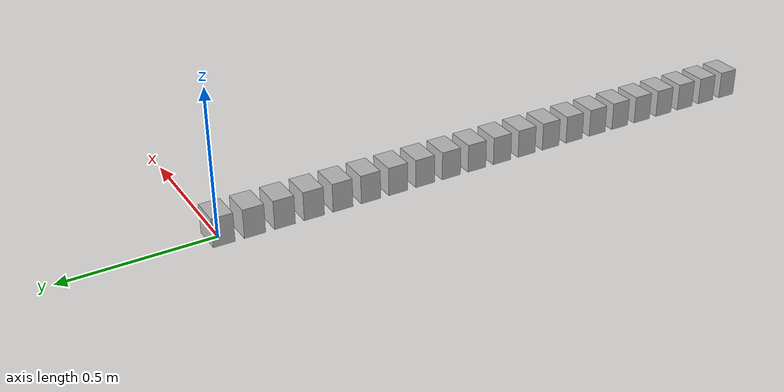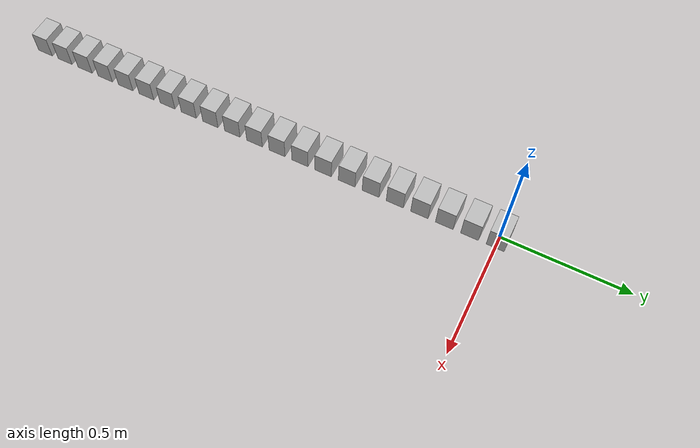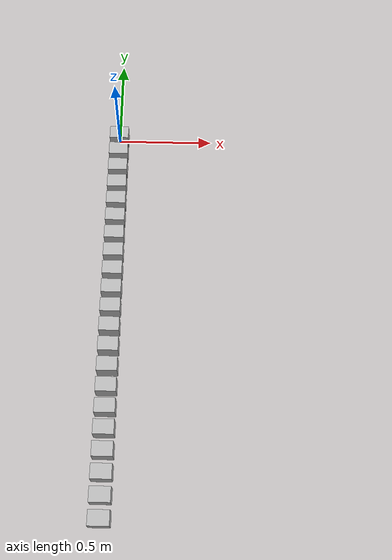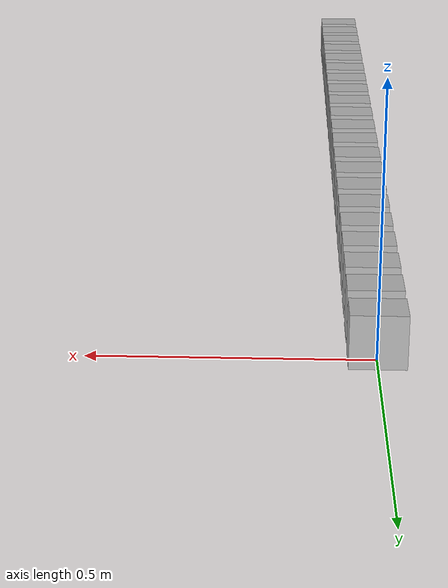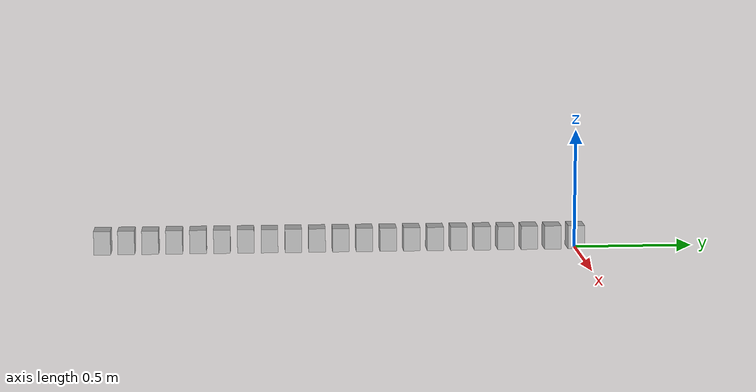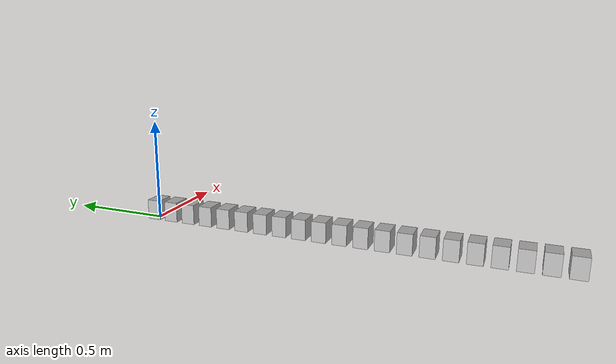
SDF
<?xml version="1.0" encoding="UTF-8"?>
<sdf version="1.6">
<model name="serial snake">

<!--                                                   links
                                                           -->

<!--                                     BOX parts      -->

  <!-- ---------------------------------parallel link 01-------------------------------------------------------------------------- -->
  <!-- -- box part ----  ------ -->
  <link name="plink_01_box">
    <pose>0 0 0.05 0 0 0</pose>
    <inertial>
      <inertia>
        <ixx>0.00018625</ixx> <!-- using tensor matrix -->
        <iyy>0.00025</iyy>
        <izz>0.00018625</izz>
        <ixy>0</ixy>
        <ixz>0</ixz>
        <iyz>0</iyz>
      </inertia>
      <mass>0.15</mass>
    </inertial>
    <collision name="collision">
      <geometry>
        <box>
          <size>0.1 0.07 0.1</size>
        </box>
      </geometry>
    </collision>
    <visual name="visual">
      <geometry>
        <box>
          <size>0.1 0.07 0.1</size>
        </box>
      </geometry>
    </visual>
  </link>

 <!-- ---------------------------------parallel link 02------------------------------------------------------------------------ -->
  <!-- -- box part ----  ------ -->
  <link name="plink_02_box">
    <pose>0 -0.10 0.05 0 0 0</pose>
    <inertial>
      <inertia>
        <ixx>0.00018625</ixx> <!-- using tensor matrix -->
        <iyy>0.00025</iyy>
        <izz>0.00018625</izz>
        <ixy>0</ixy>
        <ixz>0</ixz>
        <iyz>0</iyz>
      </inertia>
      <mass>0.15</mass>
    </inertial>
    <collision name="collision">
      <geometry>
        <box>
          <size>0.1 0.07 0.1</size>
        </box>
      </geometry>
    </collision>
    <visual name="visual">
      <geometry>
        <box>
          <size>0.1 0.07 0.1</size>
        </box>
      </geometry>
    </visual>
  </link>
 <!-- ---------------------------------parallel link 03------------------------------------------------------------------------ -->
  <!-- -- box part ----  ------ -->
  <link name="plink_03_box">
    <pose>0 -0.20 0.05 0 0 0</pose> <!-- changes with -0.10 for each  y coord -->
    <inertial>
      <inertia>
        <ixx>0.00018625</ixx> <!-- using tensor matrix -->
        <iyy>0.00025</iyy>
        <izz>0.00018625</izz>
        <ixy>0</ixy>
        <ixz>0</ixz>
        <iyz>0</iyz>
      </inertia>
      <mass>0.15</mass>
    </inertial>
    <collision name="collision">
      <geometry>
        <box>
          <size>0.1 0.07 0.1</size>
        </box>
      </geometry>
    </collision>
    <visual name="visual">
      <geometry>
        <box>
          <size>0.1 0.07 0.1</size>
        </box>
      </geometry>
    </visual>
  </link>
 <!-- ---------------------------------parallel link 04------------------------------------------------------------------------ -->
  <!-- -- box part ----  ------ -->
  <link name="plink_04_box">
    <pose>0 -0.30 0.05 0 0 0</pose> <!-- changes with -0.10 for each  y coord -->
    <inertial>
      <inertia>
        <ixx>0.00018625</ixx> <!-- using tensor matrix -->
        <iyy>0.00025</iyy>
        <izz>0.00018625</izz>
        <ixy>0</ixy>
        <ixz>0</ixz>
        <iyz>0</iyz>
      </inertia>
      <mass>0.15</mass>
    </inertial>
    <collision name="collision">
      <geometry>
        <box>
          <size>0.1 0.07 0.1</size>
        </box>
      </geometry>
    </collision>
    <visual name="visual">
      <geometry>
        <box>
          <size>0.1 0.07 0.1</size>
        </box>
      </geometry>
    </visual>
  </link>
 <!-- ---------------------------------parallel link 05------------------------------------------------------------------------ -->
  <!-- -- box part ----  ------ -->
  <link name="plink_05_box">
    <pose>0 -0.40 0.05 0 0 0</pose> <!-- changes with -0.10 for each  y coord -->
    <inertial>
      <inertia>
        <ixx>0.00018625</ixx> <!-- using tensor matrix -->
        <iyy>0.00025</iyy>
        <izz>0.00018625</izz>
        <ixy>0</ixy>
        <ixz>0</ixz>
        <iyz>0</iyz>
      </inertia>
      <mass>0.15</mass>
    </inertial>
    <collision name="collision">
      <geometry>
        <box>
          <size>0.1 0.07 0.1</size>
        </box>
      </geometry>
    </collision>
    <visual name="visual">
      <geometry>
        <box>
          <size>0.1 0.07 0.1</size>
        </box>
      </geometry>
    </visual>
  </link>
 <!-- ---------------------------------parallel link 06------------------------------------------------------------------------ -->
  <!-- -- box part ----  ------ -->
  <link name="plink_06_box">
    <pose>0 -0.50 0.05 0 0 0</pose> <!-- changes with -0.10 for each  y coord -->
    <inertial>
      <inertia>
        <ixx>0.00018625</ixx> <!-- using tensor matrix -->
        <iyy>0.00025</iyy>
        <izz>0.00018625</izz>
        <ixy>0</ixy>
        <ixz>0</ixz>
        <iyz>0</iyz>
      </inertia>
      <mass>0.15</mass>
    </inertial>
    <collision name="collision">
      <geometry>
        <box>
          <size>0.1 0.07 0.1</size>
        </box>
      </geometry>
    </collision>
    <visual name="visual">
      <geometry>
        <box>
          <size>0.1 0.07 0.1</size>
        </box>
      </geometry>
    </visual>
  </link>
 <!-- ---------------------------------parallel link 07------------------------------------------------------------------------ -->
  <!-- -- box part ----  ------ -->
  <link name="plink_07_box">
    <pose>0 -0.60 0.05 0 0 0</pose> <!-- changes with -0.10 for each  y coord -->
    <inertial>
      <inertia>
        <ixx>0.00018625</ixx> <!-- using tensor matrix -->
        <iyy>0.00025</iyy>
        <izz>0.00018625</izz>
        <ixy>0</ixy>
        <ixz>0</ixz>
        <iyz>0</iyz>
      </inertia>
      <mass>0.15</mass>
    </inertial>
    <collision name="collision">
      <geometry>
        <box>
          <size>0.1 0.07 0.1</size>
        </box>
      </geometry>
    </collision>
    <visual name="visual">
      <geometry>
        <box>
          <size>0.1 0.07 0.1</size>
        </box>
      </geometry>
    </visual>
  </link>
 <!-- ---------------------------------parallel link 08------------------------------------------------------------------------ -->
  <!-- -- box part ----  ------ -->
  <link name="plink_08_box">
    <pose>0 -0.70 0.05 0 0 0</pose> <!-- changes with -0.10 for each  y coord -->
    <inertial>
      <inertia>
        <ixx>0.00018625</ixx> <!-- using tensor matrix -->
        <iyy>0.00025</iyy>
        <izz>0.00018625</izz>
        <ixy>0</ixy>
        <ixz>0</ixz>
        <iyz>0</iyz>
      </inertia>
      <mass>0.15</mass>
    </inertial>
    <collision name="collision">
      <geometry>
        <box>
          <size>0.1 0.07 0.1</size>
        </box>
      </geometry>
    </collision>
    <visual name="visual">
      <geometry>
        <box>
          <size>0.1 0.07 0.1</size>
        </box>
      </geometry>
    </visual>
  </link>
 <!-- ---------------------------------parallel link 09------------------------------------------------------------------------ -->
  <!-- -- box part ----  ------ -->
  <link name="plink_09_box">
    <pose>0 -0.80 0.05 0 0 0</pose> <!-- changes with -0.10 for each  y coord -->
    <inertial>
      <inertia>
        <ixx>0.00018625</ixx> <!-- using tensor matrix -->
        <iyy>0.00025</iyy>
        <izz>0.00018625</izz>
        <ixy>0</ixy>
        <ixz>0</ixz>
        <iyz>0</iyz>
      </inertia>
      <mass>0.15</mass>
    </inertial>
    <collision name="collision">
      <geometry>
        <box>
          <size>0.1 0.07 0.1</size>
        </box>
      </geometry>
    </collision>
    <visual name="visual">
      <geometry>
        <box>
          <size>0.1 0.07 0.1</size>
        </box>
      </geometry>
    </visual>
  </link>
 <!-- ---------------------------------parallel link 10------------------------------------------------------------------------ -->
  <!-- -- box part ----  ------ -->
  <link name="plink_10_box">
    <pose>0 -0.90 0.05 0 0 0</pose> <!-- changes with -0.10 for each  y coord -->
    <inertial>
      <inertia>
        <ixx>0.00018625</ixx> <!-- using tensor matrix -->
        <iyy>0.00025</iyy>
        <izz>0.00018625</izz>
        <ixy>0</ixy>
        <ixz>0</ixz>
        <iyz>0</iyz>
      </inertia>
      <mass>0.15</mass>
    </inertial>
    <collision name="collision">
      <geometry>
        <box>
          <size>0.1 0.07 0.1</size>
        </box>
      </geometry>
    </collision>
    <visual name="visual">
      <geometry>
        <box>
          <size>0.1 0.07 0.1</size>
        </box>
      </geometry>
    </visual>
  </link>
 <!-- ---------------------------------parallel link 11------------------------------------------------------------------------ -->
  <!-- -- box part ----  ------ -->
  <link name="plink_11_box">
    <pose>0 -1.00 0.05 0 0 0</pose> <!-- changes with -0.10 for each  y coord -->
    <inertial>
      <inertia>
        <ixx>0.00018625</ixx> <!-- using tensor matrix -->
        <iyy>0.00025</iyy>
        <izz>0.00018625</izz>
        <ixy>0</ixy>
        <ixz>0</ixz>
        <iyz>0</iyz>
      </inertia>
      <mass>0.15</mass>
    </inertial>
    <collision name="collision">
      <geometry>
        <box>
          <size>0.1 0.07 0.1</size>
        </box>
      </geometry>
    </collision>
    <visual name="visual">
      <geometry>
        <box>
          <size>0.1 0.07 0.1</size>
        </box>
      </geometry>
    </visual>
  </link>
 <!-- ---------------------------------parallel link 12------------------------------------------------------------------------ -->
  <!-- -- box part ----  ------ -->
  <link name="plink_12_box">
    <pose>0 -1.10 0.05 0 0 0</pose> <!-- changes with -0.10 for each  y coord -->
    <inertial>
      <inertia>
        <ixx>0.00018625</ixx> <!-- using tensor matrix -->
        <iyy>0.00025</iyy>
        <izz>0.00018625</izz>
        <ixy>0</ixy>
        <ixz>0</ixz>
        <iyz>0</iyz>
      </inertia>
      <mass>0.15</mass>
    </inertial>
    <collision name="collision">
      <geometry>
        <box>
          <size>0.1 0.07 0.1</size>
        </box>
      </geometry>
    </collision>
    <visual name="visual">
      <geometry>
        <box>
          <size>0.1 0.07 0.1</size>
        </box>
      </geometry>
    </visual>
  </link>
 <!-- ---------------------------------parallel link 13------------------------------------------------------------------------ -->
  <!-- -- box part ----  ------ -->
  <link name="plink_13_box">
    <pose>0 -1.20 0.05 0 0 0</pose> <!-- changes with -0.10 for each  y coord -->
    <inertial>
      <inertia>
        <ixx>0.00018625</ixx> <!-- using tensor matrix -->
        <iyy>0.00025</iyy>
        <izz>0.00018625</izz>
        <ixy>0</ixy>
        <ixz>0</ixz>
        <iyz>0</iyz>
      </inertia>
      <mass>0.15</mass>
    </inertial>
    <collision name="collision">
      <geometry>
        <box>
          <size>0.1 0.07 0.1</size>
        </box>
      </geometry>
    </collision>
    <visual name="visual">
      <geometry>
        <box>
          <size>0.1 0.07 0.1</size>
        </box>
      </geometry>
    </visual>
  </link>
 <!-- ---------------------------------parallel link 14------------------------------------------------------------------------ -->
  <!-- -- box part ----  ------ -->
  <link name="plink_14_box">
    <pose>0 -1.30 0.05 0 0 0</pose> <!-- changes with -0.10 for each  y coord -->
    <inertial>
      <inertia>
        <ixx>0.00018625</ixx> <!-- using tensor matrix -->
        <iyy>0.00025</iyy>
        <izz>0.00018625</izz>
        <ixy>0</ixy>
        <ixz>0</ixz>
        <iyz>0</iyz>
      </inertia>
      <mass>0.15</mass>
    </inertial>
    <collision name="collision">
      <geometry>
        <box>
          <size>0.1 0.07 0.1</size>
        </box>
      </geometry>
    </collision>
    <visual name="visual">
      <geometry>
        <box>
          <size>0.1 0.07 0.1</size>
        </box>
      </geometry>
    </visual>
  </link>
  <!-- ---------------------------------parallel link 15------------------------------------------------------------------------ -->
  <!-- -- box part ----  ------ -->
  <link name="plink_15_box">
    <pose>0 -1.40 0.05 0 0 0</pose> <!-- changes with -0.10 for each  y coord -->
    <inertial>
      <inertia>
        <ixx>0.00018625</ixx> <!-- using tensor matrix -->
        <iyy>0.00025</iyy>
        <izz>0.00018625</izz>
        <ixy>0</ixy>
        <ixz>0</ixz>
        <iyz>0</iyz>
      </inertia>
      <mass>0.15</mass>
    </inertial>
    <collision name="collision">
      <geometry>
        <box>
          <size>0.1 0.07 0.1</size>
        </box>
      </geometry>
    </collision>
    <visual name="visual">
      <geometry>
        <box>
          <size>0.1 0.07 0.1</size>
        </box>
      </geometry>
    </visual>
  </link>
 <!-- ---------------------------------parallel link 16------------------------------------------------------------------------ -->
  <!-- -- box part ----  ------ -->
  <link name="plink_16_box">
    <pose>0 -1.50 0.05 0 0 0</pose> <!-- changes with -0.10 for each  y coord -->
    <inertial>
      <inertia>
        <ixx>0.00018625</ixx> <!-- using tensor matrix -->
        <iyy>0.00025</iyy>
        <izz>0.00018625</izz>
        <ixy>0</ixy>
        <ixz>0</ixz>
        <iyz>0</iyz>
      </inertia>
      <mass>0.15</mass>
    </inertial>
    <collision name="collision">
      <geometry>
        <box>
          <size>0.1 0.07 0.1</size>
        </box>
      </geometry>
    </collision>
    <visual name="visual">
      <geometry>
        <box>
          <size>0.1 0.07 0.1</size>
        </box>
      </geometry>
    </visual>
  </link>
 <!-- ---------------------------------parallel link 17------------------------------------------------------------------------ -->
  <!-- -- box part ----  ------ -->
  <link name="plink_17_box">
    <pose>0 -1.60 0.05 0 0 0</pose> <!-- changes with -0.10 for each  y coord -->
    <inertial>
      <inertia>
        <ixx>0.00018625</ixx> <!-- using tensor matrix -->
        <iyy>0.00025</iyy>
        <izz>0.00018625</izz>
        <ixy>0</ixy>
        <ixz>0</ixz>
        <iyz>0</iyz>
      </inertia>
      <mass>0.15</mass>
    </inertial>
    <collision name="collision">
      <geometry>
        <box>
          <size>0.1 0.07 0.1</size>
        </box>
      </geometry>
    </collision>
    <visual name="visual">
      <geometry>
        <box>
          <size>0.1 0.07 0.1</size>
        </box>
      </geometry>
    </visual>
  </link>
 <!-- ---------------------------------parallel link 18------------------------------------------------------------------------ -->
  <!-- -- box part ----  ------ -->
  <link name="plink_18_box">
    <pose>0 -1.70 0.05 0 0 0</pose> <!-- changes with -0.10 for each  y coord -->
    <inertial>
      <inertia>
        <ixx>0.00018625</ixx> <!-- using tensor matrix -->
        <iyy>0.00025</iyy>
        <izz>0.00018625</izz>
        <ixy>0</ixy>
        <ixz>0</ixz>
        <iyz>0</iyz>
      </inertia>
      <mass>0.15</mass>
    </inertial>
    <collision name="collision">
      <geometry>
        <box>
          <size>0.1 0.07 0.1</size>
        </box>
      </geometry>
    </collision>
    <visual name="visual">
      <geometry>
        <box>
          <size>0.1 0.07 0.1</size>
        </box>
      </geometry>
    </visual>
  </link>
   <!-- ---------------------------------parallel link 19------------------------------------------------------------------------ -->
  <!-- -- box part ----  ------ -->
  <link name="plink_19_box">
    <pose>0 -1.80 0.05 0 0 0</pose> <!-- changes with -0.10 for each  y coord -->
    <inertial>
      <inertia>
        <ixx>0.00018625</ixx> <!-- using tensor matrix -->
        <iyy>0.00025</iyy>
        <izz>0.00018625</izz>
        <ixy>0</ixy>
        <ixz>0</ixz>
        <iyz>0</iyz>
      </inertia>
      <mass>0.15</mass>
    </inertial>
    <collision name="collision">
      <geometry>
        <box>
          <size>0.1 0.07 0.1</size>
        </box>
      </geometry>
    </collision>
    <visual name="visual">
      <geometry>
        <box>
          <size>0.1 0.07 0.1</size>
        </box>
      </geometry>
    </visual>
  </link>
 <!-- ---------------------------------parallel link 20------------------------------------------------------------------------ -->
  <!-- -- box part ----  ------ -->
  <link name="plink_20_box">
    <pose>0 -1.90 0.05 0 0 0</pose> <!-- changes with -0.10 for each  y coord -->
    <inertial>
      <inertia>
        <ixx>0.00018625</ixx> <!-- using tensor matrix -->
        <iyy>0.00025</iyy>
        <izz>0.00018625</izz>
        <ixy>0</ixy>
        <ixz>0</ixz>
        <iyz>0</iyz>
      </inertia>
      <mass>0.15</mass>
    </inertial>
    <collision name="collision">
      <geometry>
        <box>
          <size>0.1 0.07 0.1</size>
        </box>
      </geometry>
    </collision>
    <visual name="visual">
      <geometry>
        <box>
          <size>0.1 0.07 0.1</size>
        </box>
      </geometry>
    </visual>
  </link>
 <!-- ---------------------------------parallel link 21------------------------------------------------------------------------ -->
  <!-- -- box part ----  ------ -->
  <link name="plink_21_box">
    <pose>0 -2.00 0.05 0 0 0</pose> <!-- changes with -0.10 for each  y coord -->
    <inertial>
      <inertia>
        <ixx>0.00018625</ixx> <!-- using tensor matrix -->
        <iyy>0.00025</iyy>
        <izz>0.00018625</izz>
        <ixy>0</ixy>
        <ixz>0</ixz>
        <iyz>0</iyz>
      </inertia>
      <mass>0.15</mass>
    </inertial>
    <collision name="collision">
      <geometry>
        <box>
          <size>0.1 0.07 0.1</size>
        </box>
      </geometry>
    </collision>
    <visual name="visual">
      <geometry>
        <box>
          <size>0.1 0.07 0.1</size>
        </box>
      </geometry>
    </visual>
  </link>

<!--                                                   Dynamic  joints                                                             -->

<!-- MOVEMENT  - plink 02 --------------------------------------------------------------------------------------->
<joint name="plink_2_MOVE" type="revolute">
  <pose>0 -0.0525 0 0 0 0</pose>
  <child>plink_01_box</child>
  <parent>plink_02_box</parent>
  <axis>
    <xyz>0 0 1</xyz>
    <limit>
	<!-- have taklen 25 degrees as the llimit for actuation -->
      <lower>-0.436332</lower>
      <upper>0.436332</upper>
    </limit>
  </axis>
</joint>

<!-- MOVEMENT  - plink 03 --------------------------------------------------------------------------------------->
<joint name="plink_3_MOVE" type="revolute">
  <pose>0 -0.0525 0 0 0 0</pose>
  <child>plink_02_box</child>
  <parent>plink_03_box</parent>
  <axis>
    <xyz>0 0 1</xyz>
    <limit>
      <lower>-0.436332</lower>
      <upper>0.436332</upper>
    </limit>
  </axis>
</joint>

<!-- MOVEMENT  - plink 04 --------------------------------------------------------------------------------------->
<joint name="plink_4_MOVE" type="revolute">
  <pose>0 -0.0525 0 0 0 0</pose>
  <child>plink_03_box</child>
  <parent>plink_04_box</parent>
  <axis>
    <xyz>0 0 1</xyz>
    <limit>
      <lower>-0.436332</lower>
      <upper>0.436332</upper>
    </limit>
  </axis>
</joint>

<!-- MOVEMENT  - plink 05 --------------------------------------------------------------------------------------->
<joint name="plink_5_MOVE" type="revolute">
  <pose>0 -0.0525 0 0 0 0</pose>
  <child>plink_04_box</child>
  <parent>plink_05_box</parent>
  <axis>
    <xyz>0 0 1</xyz>
    <limit>
      <lower>-0.436332</lower>
      <upper>0.436332</upper>
    </limit>
  </axis>
</joint>

<!-- MOVEMENT  - plink 06 --------------------------------------------------------------------------------------->
<joint name="plink_6_MOVE" type="revolute">
  <pose>0 -0.0525 0 0 0 0</pose>
  <child>plink_05_box</child>
  <parent>plink_06_box</parent>
  <axis>
    <xyz>0 0 1</xyz>
    <limit>
      <lower>-0.436332</lower>
      <upper>0.436332</upper>
    </limit>
  </axis>
</joint>

<!-- MOVEMENT  - plink 07 --------------------------------------------------------------------------------------->
<joint name="plink_7_MOVE" type="revolute">
  <pose>0 -0.0525 0 0 0 0</pose>
  <child>plink_06_box</child>
  <parent>plink_07_box</parent>
  <axis>
    <xyz>0 0 1</xyz>
    <limit>
      <lower>-0.436332</lower>
      <upper>0.436332</upper>
    </limit>
  </axis>
</joint>

<!-- MOVEMENT  - plink 08 --------------------------------------------------------------------------------------->
<joint name="plink_8_MOVE" type="revolute">
  <pose>0 -0.0525 0 0 0 0</pose>
  <child>plink_07_box</child>
  <parent>plink_08_box</parent>
  <axis>
    <xyz>0 0 1</xyz>
    <limit>
      <lower>-0.436332</lower>
      <upper>0.436332</upper>
    </limit>
  </axis>
</joint>

<!-- MOVEMENT  - plink 09 --------------------------------------------------------------------------------------->
<joint name="plink_9_MOVE" type="revolute">
  <pose>0 -0.0525 0 0 0 0</pose>
  <child>plink_08_box</child>
  <parent>plink_09_box</parent>
  <axis>
    <xyz>0 0 1</xyz>
    <limit>
      <lower>-0.436332</lower>
      <upper>0.436332</upper>
    </limit>
  </axis>
</joint>

<!-- MOVEMENT  - plink 10 --------------------------------------------------------------------------------------->
<joint name="plink_10_MOVE" type="revolute">
  <pose>0 -0.0525 0 0 0 0</pose>
  <child>plink_09_box</child>
  <parent>plink_10_box</parent>
  <axis>
    <xyz>0 0 1</xyz>
    <limit>
      <lower>-0.436332</lower>
      <upper>0.436332</upper>
    </limit>
  </axis>
</joint>

<!-- MOVEMENT  - plink 11 --------------------------------------------------------------------------------------->
<joint name="plink_11_MOVE" type="revolute">
  <pose>0 -0.0525 0 0 0 0</pose>
  <child>plink_10_box</child>
  <parent>plink_11_box</parent>
  <axis>
    <xyz>0 0 1</xyz>
    <limit>
      <lower>-0.436332</lower>
      <upper>0.436332</upper>
    </limit>
  </axis>
</joint>

<!-- MOVEMENT  - plink 12 --------------------------------------------------------------------------------------->
<joint name="plink_12_MOVE" type="revolute">
  <pose>0 -0.0525 0 0 0 0</pose>
  <child>plink_11_box</child>
  <parent>plink_12_box</parent>
  <axis>
    <xyz>0 0 1</xyz>
    <limit>
      <lower>-0.436332</lower>
      <upper>0.436332</upper>
    </limit>
  </axis>
</joint>

<!-- MOVEMENT  - plink 13 --------------------------------------------------------------------------------------->
<joint name="plink_13_MOVE" type="revolute">
  <pose>0 -0.0525 0 0 0 0</pose>
  <child>plink_12_box</child>
  <parent>plink_13_box</parent>
  <axis>
    <xyz>0 0 1</xyz>
    <limit>
      <lower>-0.436332</lower>
      <upper>0.436332</upper>
    </limit>
  </axis>
</joint>

<!-- MOVEMENT  - plink 14 --------------------------------------------------------------------------------------->
<joint name="plink_14_MOVE" type="revolute">
  <pose>0 -0.0525 0 0 0 0</pose>
  <child>plink_13_box</child>
  <parent>plink_14_box</parent>
  <axis>
    <xyz>0 0 1</xyz>
    <limit>
      <lower>-0.436332</lower>
      <upper>0.436332</upper>
    </limit>
  </axis>
</joint>

<!-- MOVEMENT  - plink 15 --------------------------------------------------------------------------------------->
<joint name="plink_15_MOVE" type="revolute">
  <pose>0 -0.0525 0 0 0 0</pose>
  <child>plink_14_box</child>
  <parent>plink_15_box</parent>
  <axis>
    <xyz>0 0 1</xyz>
    <limit>
      <lower>-0.436332</lower>
      <upper>0.436332</upper>
    </limit>
  </axis>
</joint>

<!-- MOVEMENT  - plink 16 --------------------------------------------------------------------------------------->
<joint name="plink_16_MOVE" type="revolute">
  <pose>0 -0.0525 0 0 0 0</pose>
  <child>plink_15_box</child>
  <parent>plink_16_box</parent>
  <axis>
    <xyz>0 0 1</xyz>
    <limit>
      <lower>-0.436332</lower>
      <upper>0.436332</upper>
    </limit>
  </axis>
</joint>

<!-- MOVEMENT  - plink 17 --------------------------------------------------------------------------------------->
<joint name="plink_17_MOVE" type="revolute">
  <pose>0 -0.0525 0 0 0 0</pose>
  <child>plink_16_box</child>
  <parent>plink_17_box</parent>
  <axis>
    <xyz>0 0 1</xyz>
    <limit>
      <lower>-0.436332</lower>
      <upper>0.436332</upper>
    </limit>
  </axis>
</joint>

<!-- MOVEMENT  - plink 18 --------------------------------------------------------------------------------------->
<joint name="plink_18_MOVE" type="revolute">
  <pose>0 -0.0525 0 0 0 0</pose>
  <child>plink_17_box</child>
  <parent>plink_18_box</parent>
  <axis>
    <xyz>0 0 1</xyz>
    <limit>
      <lower>-0.436332</lower>
      <upper>0.436332</upper>
    </limit>
  </axis>
</joint>

<!-- MOVEMENT  - plink 19 --------------------------------------------------------------------------------------->
<joint name="plink_19_MOVE" type="revolute">
  <pose>0 -0.0525 0 0 0 0</pose>
  <child>plink_18_box</child>
  <parent>plink_19_box</parent>
  <axis>
    <xyz>0 0 1</xyz>
    <limit>
      <lower>-0.436332</lower>
      <upper>0.436332</upper>
    </limit>
  </axis>
</joint>

<!-- MOVEMENT  - plink 20 --------------------------------------------------------------------------------------->
<joint name="plink_20_MOVE" type="revolute">
  <pose>0 -0.0525 0 0 0 0</pose>
  <child>plink_19_box</child>
  <parent>plink_20_box</parent>
  <axis>
    <xyz>0 0 1</xyz>
    <limit>
      <lower>-0.436332</lower>
      <upper>0.436332</upper>
    </limit>
  </axis>
</joint>
<!-- MOVEMENT  - plink 21 --------------------------------------------------------------------------------------->
<joint name="plink_21_MOVE" type="revolute">
  <pose>0 -0.0525 0 0 0 0</pose>
  <child>plink_20_box</child>
  <parent>plink_21_box</parent>
  <axis>
    <xyz>0 0 1</xyz>
    <limit>
      <lower>-0.436332</lower>
      <upper>0.436332</upper>
    </limit>
  </axis>
</joint>

<!--                                     Plugin                                                                       -->

<!-- Note - for the plugin to work uncomment the plugin tag and enter the absoute path of the plugin libmovementPLugin.so below -->

</model>
</sdf>
